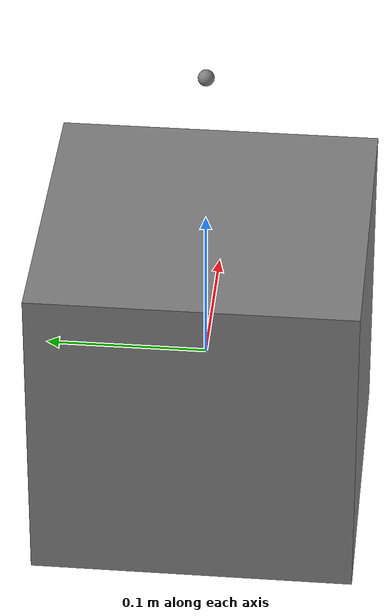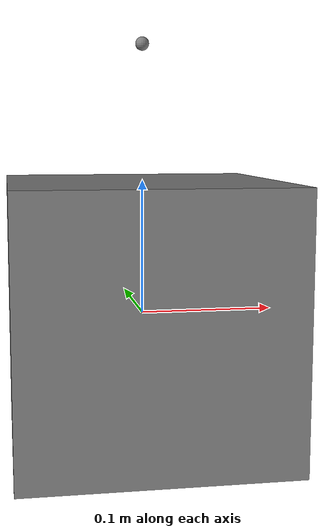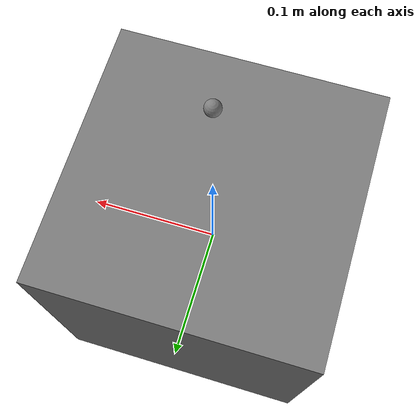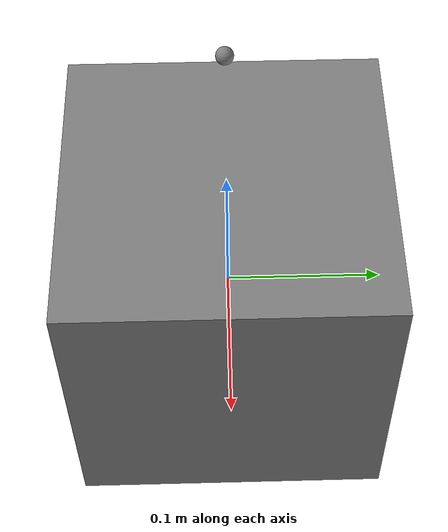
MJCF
<mujoco model="sensors_suite">
  <worldbody>
    <body name="base" pos="0 0 0">
      <inertial pos="0 0 0" mass="1.0" diaginertia="0.1 0.1 0.1"/>
      <geom name="base_geom" type="box" size="0.1 0.1 0.1"/>
      <site name="head_site" pos="0 0 0.2" quat="1 0 0 0"/>
      <site name="foot_site" pos="0 0 -0.1"/>
      <camera name="onboard" pos="0.05 0 0.1" fovy="60"/>
    </body>
  </worldbody>
  <sensor>
    <rangefinder name="height_ray" site="head_site"/>
    <accelerometer name="imu_acc" site="head_site"/>
    <touch name="foot_touch" site="foot_site"/>
    <framepos name="base_pose" objtype="body" objname="base"/>
  </sensor>
</mujoco>
